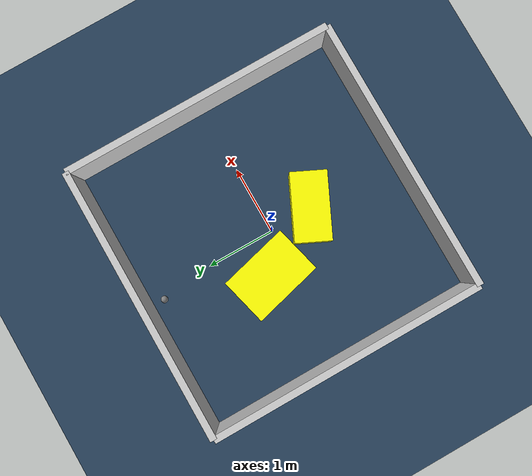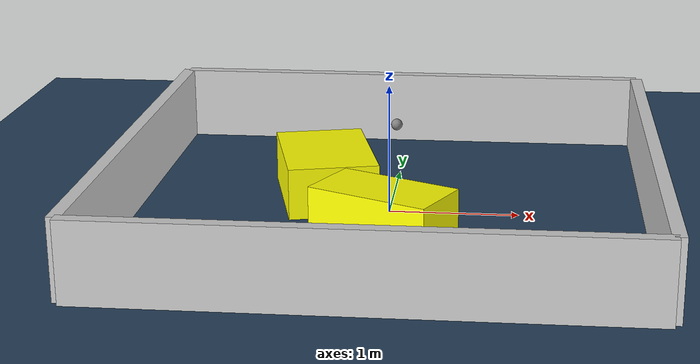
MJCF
<?xml version="1.0" ?>
<mujoco model="generated_environment">
  <option timestep="0.01" integrator="RK4" cone="elliptic"/>
  <default>
    <geom density="1"/>
  </default>
  <asset>
    <texture builtin="gradient" height="3072" rgb1="0.3 0.5 0.7" rgb2="0 0 0" type="skybox" width="512"/>
    <texture builtin="checker" height="300" mark="edge" markrgb="0.8 0.8 0.8" name="groundplane" rgb1="0.2 0.3 0.4" rgb2="0.1 0.2 0.3" type="2d" width="300"/>
    <material name="groundplane" reflectance="0.2" texrepeat="5 5" texture="groundplane" texuniform="true"/>
    <material name="robot" rgba="0.0 1.0 0.0 1"/>
  </asset>
  <worldbody>
    <light dir="0 0 -1" directional="true" pos="0 0 1.5"/>
    <geom condim="4" friction="1.0 0.005 0.001" material="groundplane" name="floor" size="0 0 0.05" type="plane"/>
    <body name="walls">
      <geom name="wall_1" condim="4" pos="-2.0 0.0 0.3" rgba="0.800000011920929 0.800000011920929 0.800000011920929 1.0" size="0.05 2.0 0.3" type="box"/>
      <geom name="wall_2" condim="4" pos="2.0 0.0 0.3" rgba="0.800000011920929 0.800000011920929 0.800000011920929 1.0" size="0.05 2.0 0.3" type="box"/>
      <geom name="wall_3" condim="4" pos="0.0 -2.0 0.3" rgba="0.800000011920929 0.800000011920929 0.800000011920929 1.0" size="2.0 0.05 0.3" type="box"/>
      <geom name="wall_4" condim="4" pos="0.0 2.0 0.3" rgba="0.800000011920929 0.800000011920929 0.800000011920929 1.0" size="2.0 0.05 0.3" type="box"/>
    </body>
    <body name="robot">
      <joint name="joint_x" type="slide" pos="0 0 0" axis="1 0 0"/>
      <joint name="joint_y" type="slide" pos="0 0 0" axis="0 1 0"/>
      <geom name="robot" type="sphere" pos="-0.09554488207717737 1.7461769677138523 0.2" size="0.05" mass="5." friction="1.0 0.005 0.0001" condim="4"/>
      <site name="sensor_ball"/>
    </body>
    <body name="obstacle_1_movable">
      <geom name="obstacle_1_movable" condim="4" pos="-0.5337854334061274 0.317966353253738 0.2" euler="0 0 14.258237377366726" friction="1.0 0.005 0.001" rgba="1 1 0 1" size="0.349715922938566 0.514033389507986 0.2" type="box" mass="0.1"/>
      <joint type="free"/>
    </body>
    <body name="obstacle_2_movable">
      <geom name="obstacle_2_movable" condim="4" pos="0.009856678383563855 -0.6178331795189524 0.2" euler="0 0 334.50085268576555" friction="1.0 0.005 0.001" rgba="1 1 0 1" size="0.4860912803800567 0.26005681380423556 0.2" type="box" mass="0.1"/>
      <joint type="free"/>
    </body>
  </worldbody>
  <actuator>
    <motor name="actuator_x" joint="joint_x" gear="1" ctrlrange="-1 1"/>
    <motor name="actuator_y" joint="joint_y" gear="1" ctrlrange="-1 1"/>
  </actuator>
</mujoco>
